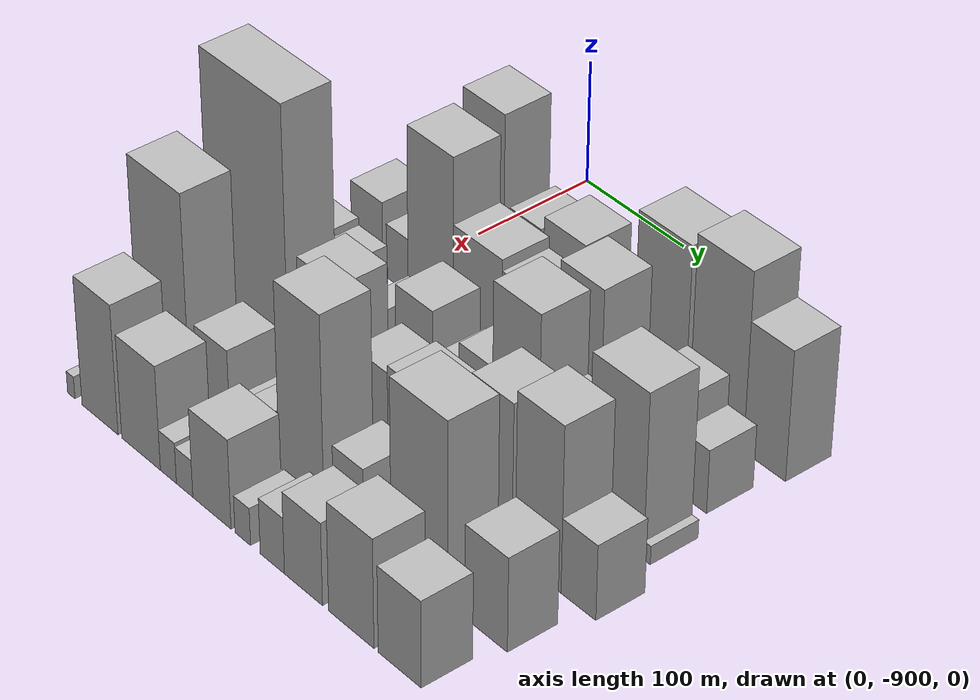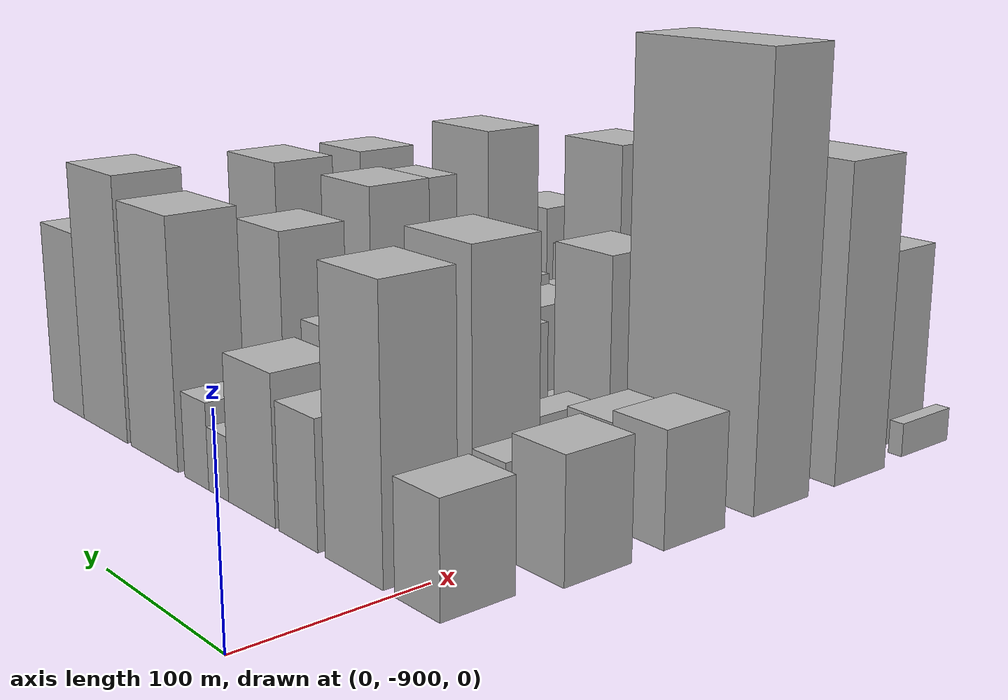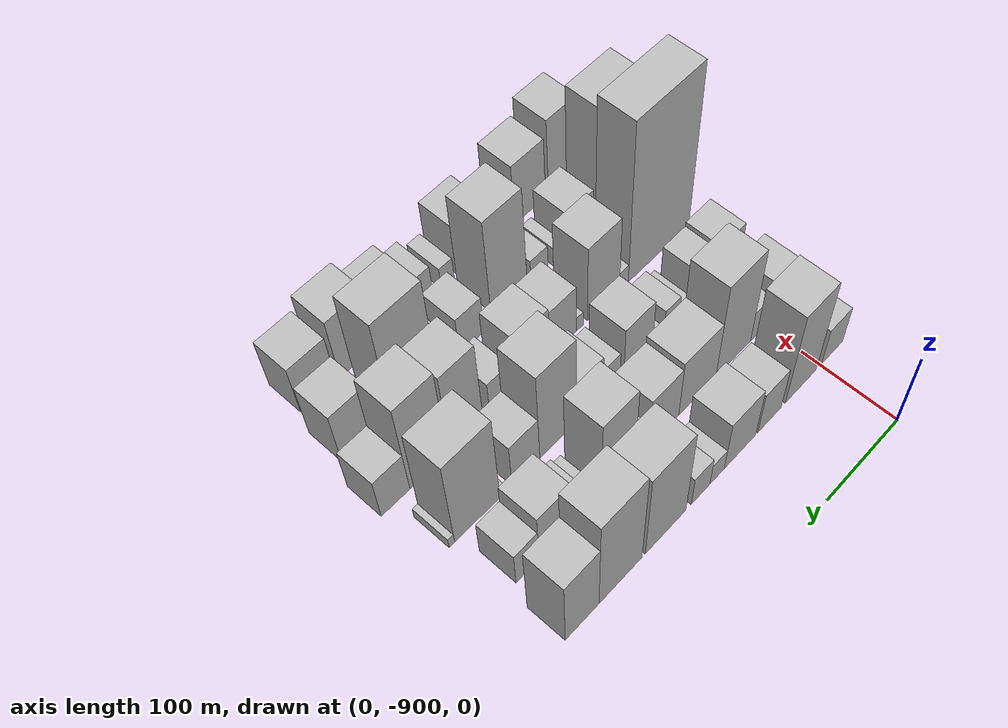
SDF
<sdf version="1.6">
 <world name="default">
  <model name="building_1">
   <static>1</static>
   <pose>100.0000 -916.5898 0 0.000000 0.000000 0.000000</pose>
   <link name="link">
    <pose>0 0 27.00 0 0 0</pose>
    <collision name="collision"><geometry><box><size>40.0000 30.8204 54.0000</size></box></geometry></collision>
    <visual name="visual">
     <cast_shadows>0</cast_shadows>
     <geometry><box><size>40.0000 30.8204 54.0000</size></box></geometry>
     <material>
      <script>
       <uri>model://HANNAS_wall/materials/scripts</uri>
       <uri>model://HANNAS_wall/materials/textures</uri>
       <name>vrc/HANNAS_wall</name>
      </script>
     </material>
    </visual>
   </link>
  </model>
  <model name="building_2">
   <static>1</static>
   <pose>100.0000 -871.5091 0 0.000000 0.000000 0.000000</pose>
   <link name="link">
    <pose>0 0 67.50 0 0 0</pose>
    <collision name="collision"><geometry><box><size>40.0000 43.3409 135.0000</size></box></geometry></collision>
    <visual name="visual">
     <cast_shadows>0</cast_shadows>
     <geometry><box><size>40.0000 43.3409 135.0000</size></box></geometry>
     <material>
      <script>
       <uri>model://HANNAS_wall/materials/scripts</uri>
       <uri>model://HANNAS_wall/materials/textures</uri>
       <name>vrc/HANNAS_wall</name>
      </script>
     </material>
    </visual>
   </link>
  </model>
  <model name="building_3">
   <static>1</static>
   <pose>100.0000 -827.7972 0 0.000000 0.000000 0.000000</pose>
   <link name="link">
    <pose>0 0 31.50 0 0 0</pose>
    <collision name="collision"><geometry><box><size>40.0000 32.0829 63.0000</size></box></geometry></collision>
    <visual name="visual">
     <cast_shadows>0</cast_shadows>
     <geometry><box><size>40.0000 32.0829 63.0000</size></box></geometry>
     <material>
      <script>
       <uri>model://HANNAS_wall/materials/scripts</uri>
       <uri>model://HANNAS_wall/materials/textures</uri>
       <name>vrc/HANNAS_wall</name>
      </script>
     </material>
    </visual>
   </link>
  </model>
  <model name="building_4">
   <static>1</static>
   <pose>100.0000 -787.8705 0 0.000000 0.000000 0.000000</pose>
   <link name="link">
    <pose>0 0 37.50 0 0 0</pose>
    <collision name="collision"><geometry><box><size>40.0000 41.7706 75.0000</size></box></geometry></collision>
    <visual name="visual">
     <cast_shadows>0</cast_shadows>
     <geometry><box><size>40.0000 41.7706 75.0000</size></box></geometry>
     <material>
      <script>
       <uri>model://HANNAS_wall/materials/scripts</uri>
       <uri>model://HANNAS_wall/materials/textures</uri>
       <name>vrc/HANNAS_wall</name>
      </script>
     </material>
    </visual>
   </link>
  </model>
  <model name="building_5">
   <static>1</static>
   <pose>100.0000 -757.5340 0 0.000000 0.000000 0.000000</pose>
   <link name="link">
    <pose>0 0 16.50 0 0 0</pose>
    <collision name="collision"><geometry><box><size>40.0000 18.9024 33.0000</size></box></geometry></collision>
    <visual name="visual">
     <cast_shadows>0</cast_shadows>
     <geometry><box><size>40.0000 18.9024 33.0000</size></box></geometry>
     <material>
      <script>
       <uri>model://HANNAS_wall/materials/scripts</uri>
       <uri>model://HANNAS_wall/materials/textures</uri>
       <name>vrc/HANNAS_wall</name>
      </script>
     </material>
    </visual>
   </link>
  </model>
  <model name="building_6">
   <static>1</static>
   <pose>100.0000 -736.1260 0 0.000000 0.000000 0.000000</pose>
   <link name="link">
    <pose>0 0 22.50 0 0 0</pose>
    <collision name="collision"><geometry><box><size>40.0000 23.9137 45.0000</size></box></geometry></collision>
    <visual name="visual">
     <cast_shadows>0</cast_shadows>
     <geometry><box><size>40.0000 23.9137 45.0000</size></box></geometry>
     <material>
      <script>
       <uri>model://HANNAS_wall/materials/scripts</uri>
       <uri>model://HANNAS_wall/materials/textures</uri>
       <name>vrc/HANNAS_wall</name>
      </script>
     </material>
    </visual>
   </link>
  </model>
  <model name="building_7">
   <static>1</static>
   <pose>100.0000 -691.8284 0 0.000000 0.000000 0.000000</pose>
   <link name="link">
    <pose>0 0 66.00 0 0 0</pose>
    <collision name="collision"><geometry><box><size>40.0000 50.6814 132.0000</size></box></geometry></collision>
    <visual name="visual">
     <cast_shadows>0</cast_shadows>
     <geometry><box><size>40.0000 50.6814 132.0000</size></box></geometry>
     <material>
      <script>
       <uri>model://HANNAS_wall/materials/scripts</uri>
       <uri>model://HANNAS_wall/materials/textures</uri>
       <name>vrc/HANNAS_wall</name>
      </script>
     </material>
    </visual>
   </link>
  </model>
  <model name="building_8">
   <static>1</static>
   <pose>100.0000 -636.6558 0 0.000000 0.000000 0.000000</pose>
   <link name="link">
    <pose>0 0 72.00 0 0 0</pose>
    <collision name="collision"><geometry><box><size>40.0000 51.6640 144.0000</size></box></geometry></collision>
    <visual name="visual">
     <cast_shadows>0</cast_shadows>
     <geometry><box><size>40.0000 51.6640 144.0000</size></box></geometry>
     <material>
      <script>
       <uri>model://HANNAS_wall/materials/scripts</uri>
       <uri>model://HANNAS_wall/materials/textures</uri>
       <name>vrc/HANNAS_wall</name>
      </script>
     </material>
    </visual>
   </link>
  </model>
  <model name="building_9">
   <static>1</static>
   <pose>100.0000 -591.2603 0 0.000000 0.000000 0.000000</pose>
   <link name="link">
    <pose>0 0 52.50 0 0 0</pose>
    <collision name="collision"><geometry><box><size>40.0000 39.1270 105.0000</size></box></geometry></collision>
    <visual name="visual">
     <cast_shadows>0</cast_shadows>
     <geometry><box><size>40.0000 39.1270 105.0000</size></box></geometry>
     <material>
      <script>
       <uri>model://HANNAS_wall/materials/scripts</uri>
       <uri>model://HANNAS_wall/materials/textures</uri>
       <name>vrc/HANNAS_wall</name>
      </script>
     </material>
    </visual>
   </link>
  </model>
  <model name="building_51">
   <static>1</static>
   <pose>160.0000 -922.8829 0 0.000000 0.000000 0.000000</pose>
   <link name="link">
    <pose>0 0 30.00 0 0 0</pose>
    <collision name="collision"><geometry><box><size>40.0000 34.2342 60.0000</size></box></geometry></collision>
    <visual name="visual">
     <cast_shadows>0</cast_shadows>
     <geometry><box><size>40.0000 34.2342 60.0000</size></box></geometry>
     <material>
      <script>
       <uri>model://HANNAS_wall/materials/scripts</uri>
       <uri>model://HANNAS_wall/materials/textures</uri>
       <name>vrc/HANNAS_wall</name>
      </script>
     </material>
    </visual>
   </link>
  </model>
  <model name="building_52">
   <static>1</static>
   <pose>160.0000 -890.1988 0 0.000000 0.000000 0.000000</pose>
   <link name="link">
    <pose>0 0 22.50 0 0 0</pose>
    <collision name="collision"><geometry><box><size>40.0000 23.1340 45.0000</size></box></geometry></collision>
    <visual name="visual">
     <cast_shadows>0</cast_shadows>
     <geometry><box><size>40.0000 23.1340 45.0000</size></box></geometry>
     <material>
      <script>
       <uri>model://HANNAS_wall/materials/scripts</uri>
       <uri>model://HANNAS_wall/materials/textures</uri>
       <name>vrc/HANNAS_wall</name>
      </script>
     </material>
    </visual>
   </link>
  </model>
  <model name="building_53">
   <static>1</static>
   <pose>160.0000 -854.5709 0 0.000000 0.000000 0.000000</pose>
   <link name="link">
    <pose>0 0 69.00 0 0 0</pose>
    <collision name="collision"><geometry><box><size>40.0000 48.1218 138.0000</size></box></geometry></collision>
    <visual name="visual">
     <cast_shadows>0</cast_shadows>
     <geometry><box><size>40.0000 48.1218 138.0000</size></box></geometry>
     <material>
      <script>
       <uri>model://HANNAS_wall/materials/scripts</uri>
       <uri>model://HANNAS_wall/materials/textures</uri>
       <name>vrc/HANNAS_wall</name>
      </script>
     </material>
    </visual>
   </link>
  </model>
  <model name="building_54">
   <static>1</static>
   <pose>160.0000 -805.5470 0 0.000000 0.000000 0.000000</pose>
   <link name="link">
    <pose>0 0 42.00 0 0 0</pose>
    <collision name="collision"><geometry><box><size>40.0000 49.9259 84.0000</size></box></geometry></collision>
    <visual name="visual">
     <cast_shadows>0</cast_shadows>
     <geometry><box><size>40.0000 49.9259 84.0000</size></box></geometry>
     <material>
      <script>
       <uri>model://HANNAS_wall/materials/scripts</uri>
       <uri>model://HANNAS_wall/materials/textures</uri>
       <name>vrc/HANNAS_wall</name>
      </script>
     </material>
    </visual>
   </link>
  </model>
  <model name="building_55">
   <static>1</static>
   <pose>160.0000 -761.2351 0 0.000000 0.000000 0.000000</pose>
   <link name="link">
    <pose>0 0 37.50 0 0 0</pose>
    <collision name="collision"><geometry><box><size>40.0000 38.6980 75.0000</size></box></geometry></collision>
    <visual name="visual">
     <cast_shadows>0</cast_shadows>
     <geometry><box><size>40.0000 38.6980 75.0000</size></box></geometry>
     <material>
      <script>
       <uri>model://HANNAS_wall/materials/scripts</uri>
       <uri>model://HANNAS_wall/materials/textures</uri>
       <name>vrc/HANNAS_wall</name>
      </script>
     </material>
    </visual>
   </link>
  </model>
  <model name="building_56">
   <static>1</static>
   <pose>160.0000 -732.7814 0 0.000000 0.000000 0.000000</pose>
   <link name="link">
    <pose>0 0 18.00 0 0 0</pose>
    <collision name="collision"><geometry><box><size>40.0000 18.2093 36.0000</size></box></geometry></collision>
    <visual name="visual">
     <cast_shadows>0</cast_shadows>
     <geometry><box><size>40.0000 18.2093 36.0000</size></box></geometry>
     <material>
      <script>
       <uri>model://HANNAS_wall/materials/scripts</uri>
       <uri>model://HANNAS_wall/materials/textures</uri>
       <name>vrc/HANNAS_wall</name>
      </script>
     </material>
    </visual>
   </link>
  </model>
  <model name="building_57">
   <static>1</static>
   <pose>160.0000 -702.6959 0 0.000000 0.000000 0.000000</pose>
   <link name="link">
    <pose>0 0 58.50 0 0 0</pose>
    <collision name="collision"><geometry><box><size>40.0000 41.9616 117.0000</size></box></geometry></collision>
    <visual name="visual">
     <cast_shadows>0</cast_shadows>
     <geometry><box><size>40.0000 41.9616 117.0000</size></box></geometry>
     <material>
      <script>
       <uri>model://HANNAS_wall/materials/scripts</uri>
       <uri>model://HANNAS_wall/materials/textures</uri>
       <name>vrc/HANNAS_wall</name>
      </script>
     </material>
    </visual>
   </link>
  </model>
  <model name="building_58">
   <static>1</static>
   <pose>160.0000 -670.9258 0 0.000000 0.000000 0.000000</pose>
   <link name="link">
    <pose>0 0 13.50 0 0 0</pose>
    <collision name="collision"><geometry><box><size>40.0000 11.5786 27.0000</size></box></geometry></collision>
    <visual name="visual">
     <cast_shadows>0</cast_shadows>
     <geometry><box><size>40.0000 11.5786 27.0000</size></box></geometry>
     <material>
      <script>
       <uri>model://HANNAS_wall/materials/scripts</uri>
       <uri>model://HANNAS_wall/materials/textures</uri>
       <name>vrc/HANNAS_wall</name>
      </script>
     </material>
    </visual>
   </link>
  </model>
  <model name="building_59">
   <static>1</static>
   <pose>160.0000 -655.6511 0 0.000000 0.000000 0.000000</pose>
   <link name="link">
    <pose>0 0 18.00 0 0 0</pose>
    <collision name="collision"><geometry><box><size>40.0000 18.9706 36.0000</size></box></geometry></collision>
    <visual name="visual">
     <cast_shadows>0</cast_shadows>
     <geometry><box><size>40.0000 18.9706 36.0000</size></box></geometry>
     <material>
      <script>
       <uri>model://HANNAS_wall/materials/scripts</uri>
       <uri>model://HANNAS_wall/materials/textures</uri>
       <name>vrc/HANNAS_wall</name>
      </script>
     </material>
    </visual>
   </link>
  </model>
  <model name="building_60">
   <static>1</static>
   <pose>160.0000 -626.6289 0 0.000000 0.000000 0.000000</pose>
   <link name="link">
    <pose>0 0 37.50 0 0 0</pose>
    <collision name="collision"><geometry><box><size>40.0000 39.0739 75.0000</size></box></geometry></collision>
    <visual name="visual">
     <cast_shadows>0</cast_shadows>
     <geometry><box><size>40.0000 39.0739 75.0000</size></box></geometry>
     <material>
      <script>
       <uri>model://HANNAS_wall/materials/scripts</uri>
       <uri>model://HANNAS_wall/materials/textures</uri>
       <name>vrc/HANNAS_wall</name>
      </script>
     </material>
    </visual>
   </link>
  </model>
  <model name="building_61">
   <static>1</static>
   <pose>160.0000 -593.7699 0 0.000000 0.000000 0.000000</pose>
   <link name="link">
    <pose>0 0 25.50 0 0 0</pose>
    <collision name="collision"><geometry><box><size>40.0000 26.6440 51.0000</size></box></geometry></collision>
    <visual name="visual">
     <cast_shadows>0</cast_shadows>
     <geometry><box><size>40.0000 26.6440 51.0000</size></box></geometry>
     <material>
      <script>
       <uri>model://HANNAS_wall/materials/scripts</uri>
       <uri>model://HANNAS_wall/materials/textures</uri>
       <name>vrc/HANNAS_wall</name>
      </script>
     </material>
    </visual>
   </link>
  </model>
  <model name="building_98">
   <static>1</static>
   <pose>220.0000 -922.9265 0 0.000000 0.000000 0.000000</pose>
   <link name="link">
    <pose>0 0 28.50 0 0 0</pose>
    <collision name="collision"><geometry><box><size>40.0000 34.1470 57.0000</size></box></geometry></collision>
    <visual name="visual">
     <cast_shadows>0</cast_shadows>
     <geometry><box><size>40.0000 34.1470 57.0000</size></box></geometry>
     <material>
      <script>
       <uri>model://HANNAS_wall/materials/scripts</uri>
       <uri>model://HANNAS_wall/materials/textures</uri>
       <name>vrc/HANNAS_wall</name>
      </script>
     </material>
    </visual>
   </link>
  </model>
  <model name="building_99">
   <static>1</static>
   <pose>220.0000 -890.6963 0 0.000000 0.000000 0.000000</pose>
   <link name="link">
    <pose>0 0 25.50 0 0 0</pose>
    <collision name="collision"><geometry><box><size>40.0000 30.3133 51.0000</size></box></geometry></collision>
    <visual name="visual">
     <cast_shadows>0</cast_shadows>
     <geometry><box><size>40.0000 30.3133 51.0000</size></box></geometry>
     <material>
      <script>
       <uri>model://HANNAS_wall/materials/scripts</uri>
       <uri>model://HANNAS_wall/materials/textures</uri>
       <name>vrc/HANNAS_wall</name>
      </script>
     </material>
    </visual>
   </link>
  </model>
  <model name="building_100">
   <static>1</static>
   <pose>220.0000 -859.3480 0 0.000000 0.000000 0.000000</pose>
   <link name="link">
    <pose>0 0 13.50 0 0 0</pose>
    <collision name="collision"><geometry><box><size>40.0000 12.3832 27.0000</size></box></geometry></collision>
    <visual name="visual">
     <cast_shadows>0</cast_shadows>
     <geometry><box><size>40.0000 12.3832 27.0000</size></box></geometry>
     <material>
      <script>
       <uri>model://HANNAS_wall/materials/scripts</uri>
       <uri>model://HANNAS_wall/materials/textures</uri>
       <name>vrc/HANNAS_wall</name>
      </script>
     </material>
    </visual>
   </link>
  </model>
  <model name="building_101">
   <static>1</static>
   <pose>220.0000 -842.9505 0 0.000000 0.000000 0.000000</pose>
   <link name="link">
    <pose>0 0 19.50 0 0 0</pose>
    <collision name="collision"><geometry><box><size>40.0000 20.4118 39.0000</size></box></geometry></collision>
    <visual name="visual">
     <cast_shadows>0</cast_shadows>
     <geometry><box><size>40.0000 20.4118 39.0000</size></box></geometry>
     <material>
      <script>
       <uri>model://HANNAS_wall/materials/scripts</uri>
       <uri>model://HANNAS_wall/materials/textures</uri>
       <name>vrc/HANNAS_wall</name>
      </script>
     </material>
    </visual>
   </link>
  </model>
  <model name="building_102">
   <static>1</static>
   <pose>220.0000 -822.3984 0 0.000000 0.000000 0.000000</pose>
   <link name="link">
    <pose>0 0 12.00 0 0 0</pose>
    <collision name="collision"><geometry><box><size>40.0000 10.6923 24.0000</size></box></geometry></collision>
    <visual name="visual">
     <cast_shadows>0</cast_shadows>
     <geometry><box><size>40.0000 10.6923 24.0000</size></box></geometry>
     <material>
      <script>
       <uri>model://HANNAS_wall/materials/scripts</uri>
       <uri>model://HANNAS_wall/materials/textures</uri>
       <name>vrc/HANNAS_wall</name>
      </script>
     </material>
    </visual>
   </link>
  </model>
  <model name="building_103">
   <static>1</static>
   <pose>220.0000 -798.0531 0 0.000000 0.000000 0.000000</pose>
   <link name="link">
    <pose>0 0 36.00 0 0 0</pose>
    <collision name="collision"><geometry><box><size>40.0000 37.9985 72.0000</size></box></geometry></collision>
    <visual name="visual">
     <cast_shadows>0</cast_shadows>
     <geometry><box><size>40.0000 37.9985 72.0000</size></box></geometry>
     <material>
      <script>
       <uri>model://HANNAS_wall/materials/scripts</uri>
       <uri>model://HANNAS_wall/materials/textures</uri>
       <name>vrc/HANNAS_wall</name>
      </script>
     </material>
    </visual>
   </link>
  </model>
  <model name="building_104">
   <static>1</static>
   <pose>220.0000 -763.1293 0 0.000000 0.000000 0.000000</pose>
   <link name="link">
    <pose>0 0 21.00 0 0 0</pose>
    <collision name="collision"><geometry><box><size>40.0000 21.8491 42.0000</size></box></geometry></collision>
    <visual name="visual">
     <cast_shadows>0</cast_shadows>
     <geometry><box><size>40.0000 21.8491 42.0000</size></box></geometry>
     <material>
      <script>
       <uri>model://HANNAS_wall/materials/scripts</uri>
       <uri>model://HANNAS_wall/materials/textures</uri>
       <name>vrc/HANNAS_wall</name>
      </script>
     </material>
    </visual>
   </link>
  </model>
  <model name="building_105">
   <static>1</static>
   <pose>220.0000 -735.4498 0 0.000000 0.000000 0.000000</pose>
   <link name="link">
    <pose>0 0 31.50 0 0 0</pose>
    <collision name="collision"><geometry><box><size>40.0000 33.5099 63.0000</size></box></geometry></collision>
    <visual name="visual">
     <cast_shadows>0</cast_shadows>
     <geometry><box><size>40.0000 33.5099 63.0000</size></box></geometry>
     <material>
      <script>
       <uri>model://HANNAS_wall/materials/scripts</uri>
       <uri>model://HANNAS_wall/materials/textures</uri>
       <name>vrc/HANNAS_wall</name>
      </script>
     </material>
    </visual>
   </link>
  </model>
  <model name="building_106">
   <static>1</static>
   <pose>220.0000 -695.8119 0 0.000000 0.000000 0.000000</pose>
   <link name="link">
    <pose>0 0 66.00 0 0 0</pose>
    <collision name="collision"><geometry><box><size>40.0000 45.7659 132.0000</size></box></geometry></collision>
    <visual name="visual">
     <cast_shadows>0</cast_shadows>
     <geometry><box><size>40.0000 45.7659 132.0000</size></box></geometry>
     <material>
      <script>
       <uri>model://HANNAS_wall/materials/scripts</uri>
       <uri>model://HANNAS_wall/materials/textures</uri>
       <name>vrc/HANNAS_wall</name>
      </script>
     </material>
    </visual>
   </link>
  </model>
  <model name="building_107">
   <static>1</static>
   <pose>220.0000 -656.1597 0 0.000000 0.000000 0.000000</pose>
   <link name="link">
    <pose>0 0 33.00 0 0 0</pose>
    <collision name="collision"><geometry><box><size>40.0000 33.5384 66.0000</size></box></geometry></collision>
    <visual name="visual">
     <cast_shadows>0</cast_shadows>
     <geometry><box><size>40.0000 33.5384 66.0000</size></box></geometry>
     <material>
      <script>
       <uri>model://HANNAS_wall/materials/scripts</uri>
       <uri>model://HANNAS_wall/materials/textures</uri>
       <name>vrc/HANNAS_wall</name>
      </script>
     </material>
    </visual>
   </link>
  </model>
  <model name="building_108">
   <static>1</static>
   <pose>220.0000 -628.2798 0 0.000000 0.000000 0.000000</pose>
   <link name="link">
    <pose>0 0 7.50 0 0 0</pose>
    <collision name="collision"><geometry><box><size>40.0000 6.2212 15.0000</size></box></geometry></collision>
    <visual name="visual">
     <cast_shadows>0</cast_shadows>
     <geometry><box><size>40.0000 6.2212 15.0000</size></box></geometry>
     <material>
      <script>
       <uri>model://HANNAS_wall/materials/scripts</uri>
       <uri>model://HANNAS_wall/materials/textures</uri>
       <name>vrc/HANNAS_wall</name>
      </script>
     </material>
    </visual>
   </link>
  </model>
  <model name="building_109">
   <static>1</static>
   <pose>220.0000 -598.9357 0 0.000000 0.000000 0.000000</pose>
   <link name="link">
    <pose>0 0 66.00 0 0 0</pose>
    <collision name="collision"><geometry><box><size>40.0000 52.4671 132.0000</size></box></geometry></collision>
    <visual name="visual">
     <cast_shadows>0</cast_shadows>
     <geometry><box><size>40.0000 52.4671 132.0000</size></box></geometry>
     <material>
      <script>
       <uri>model://HANNAS_wall/materials/scripts</uri>
       <uri>model://HANNAS_wall/materials/textures</uri>
       <name>vrc/HANNAS_wall</name>
      </script>
     </material>
    </visual>
   </link>
  </model>
  <model name="building_110">
   <static>1</static>
   <pose>220.0000 -569.5650 0 0.000000 0.000000 0.000000</pose>
   <link name="link">
    <pose>0 0 7.50 0 0 0</pose>
    <collision name="collision"><geometry><box><size>40.0000 6.2743 15.0000</size></box></geometry></collision>
    <visual name="visual">
     <cast_shadows>0</cast_shadows>
     <geometry><box><size>40.0000 6.2743 15.0000</size></box></geometry>
     <material>
      <script>
       <uri>model://HANNAS_wall/materials/scripts</uri>
       <uri>model://HANNAS_wall/materials/textures</uri>
       <name>vrc/HANNAS_wall</name>
      </script>
     </material>
    </visual>
   </link>
  </model>
  <model name="building_159">
   <static>1</static>
   <pose>280.0000 -897.3479 0 0.000000 0.000000 0.000000</pose>
   <link name="link">
    <pose>0 0 109.50 0 0 0</pose>
    <collision name="collision"><geometry><box><size>40.0000 85.3042 219.0000</size></box></geometry></collision>
    <visual name="visual">
     <cast_shadows>0</cast_shadows>
     <geometry><box><size>40.0000 85.3042 219.0000</size></box></geometry>
     <material>
      <script>
       <uri>model://HANNAS_wall/materials/scripts</uri>
       <uri>model://HANNAS_wall/materials/textures</uri>
       <name>vrc/HANNAS_wall</name>
      </script>
     </material>
    </visual>
   </link>
  </model>
  <model name="building_160">
   <static>1</static>
   <pose>280.0000 -848.5611 0 0.000000 0.000000 0.000000</pose>
   <link name="link">
    <pose>0 0 13.50 0 0 0</pose>
    <collision name="collision"><geometry><box><size>40.0000 12.2693 27.0000</size></box></geometry></collision>
    <visual name="visual">
     <cast_shadows>0</cast_shadows>
     <geometry><box><size>40.0000 12.2693 27.0000</size></box></geometry>
     <material>
      <script>
       <uri>model://HANNAS_wall/materials/scripts</uri>
       <uri>model://HANNAS_wall/materials/textures</uri>
       <name>vrc/HANNAS_wall</name>
      </script>
     </material>
    </visual>
   </link>
  </model>
  <model name="building_161">
   <static>1</static>
   <pose>280.0000 -821.1986 0 0.000000 0.000000 0.000000</pose>
   <link name="link">
    <pose>0 0 54.00 0 0 0</pose>
    <collision name="collision"><geometry><box><size>40.0000 42.4558 108.0000</size></box></geometry></collision>
    <visual name="visual">
     <cast_shadows>0</cast_shadows>
     <geometry><box><size>40.0000 42.4558 108.0000</size></box></geometry>
     <material>
      <script>
       <uri>model://HANNAS_wall/materials/scripts</uri>
       <uri>model://HANNAS_wall/materials/textures</uri>
       <name>vrc/HANNAS_wall</name>
      </script>
     </material>
    </visual>
   </link>
  </model>
  <model name="building_162">
   <static>1</static>
   <pose>280.0000 -789.6836 0 0.000000 0.000000 0.000000</pose>
   <link name="link">
    <pose>0 0 10.50 0 0 0</pose>
    <collision name="collision"><geometry><box><size>40.0000 8.5741 21.0000</size></box></geometry></collision>
    <visual name="visual">
     <cast_shadows>0</cast_shadows>
     <geometry><box><size>40.0000 8.5741 21.0000</size></box></geometry>
     <material>
      <script>
       <uri>model://HANNAS_wall/materials/scripts</uri>
       <uri>model://HANNAS_wall/materials/textures</uri>
       <name>vrc/HANNAS_wall</name>
      </script>
     </material>
    </visual>
   </link>
  </model>
  <model name="building_163">
   <static>1</static>
   <pose>280.0000 -768.0450 0 0.000000 0.000000 0.000000</pose>
   <link name="link">
    <pose>0 0 34.50 0 0 0</pose>
    <collision name="collision"><geometry><box><size>40.0000 34.7032 69.0000</size></box></geometry></collision>
    <visual name="visual">
     <cast_shadows>0</cast_shadows>
     <geometry><box><size>40.0000 34.7032 69.0000</size></box></geometry>
     <material>
      <script>
       <uri>model://HANNAS_wall/materials/scripts</uri>
       <uri>model://HANNAS_wall/materials/textures</uri>
       <name>vrc/HANNAS_wall</name>
      </script>
     </material>
    </visual>
   </link>
  </model>
  <model name="building_164">
   <static>1</static>
   <pose>280.0000 -730.5774 0 0.000000 0.000000 0.000000</pose>
   <link name="link">
    <pose>0 0 37.50 0 0 0</pose>
    <collision name="collision"><geometry><box><size>40.0000 40.2319 75.0000</size></box></geometry></collision>
    <visual name="visual">
     <cast_shadows>0</cast_shadows>
     <geometry><box><size>40.0000 40.2319 75.0000</size></box></geometry>
     <material>
      <script>
       <uri>model://HANNAS_wall/materials/scripts</uri>
       <uri>model://HANNAS_wall/materials/textures</uri>
       <name>vrc/HANNAS_wall</name>
      </script>
     </material>
    </visual>
   </link>
  </model>
  <model name="building_165">
   <static>1</static>
   <pose>280.0000 -689.0456 0 0.000000 0.000000 0.000000</pose>
   <link name="link">
    <pose>0 0 24.00 0 0 0</pose>
    <collision name="collision"><geometry><box><size>40.0000 26.8316 48.0000</size></box></geometry></collision>
    <visual name="visual">
     <cast_shadows>0</cast_shadows>
     <geometry><box><size>40.0000 26.8316 48.0000</size></box></geometry>
     <material>
      <script>
       <uri>model://HANNAS_wall/materials/scripts</uri>
       <uri>model://HANNAS_wall/materials/textures</uri>
       <name>vrc/HANNAS_wall</name>
      </script>
     </material>
    </visual>
   </link>
  </model>
  <model name="building_166">
   <static>1</static>
   <pose>280.0000 -647.8301 0 0.000000 0.000000 0.000000</pose>
   <link name="link">
    <pose>0 0 60.00 0 0 0</pose>
    <collision name="collision"><geometry><box><size>40.0000 39.5995 120.0000</size></box></geometry></collision>
    <visual name="visual">
     <cast_shadows>0</cast_shadows>
     <geometry><box><size>40.0000 39.5995 120.0000</size></box></geometry>
     <material>
      <script>
       <uri>model://HANNAS_wall/materials/scripts</uri>
       <uri>model://HANNAS_wall/materials/textures</uri>
       <name>vrc/HANNAS_wall</name>
      </script>
     </material>
    </visual>
   </link>
  </model>
  <model name="building_167">
   <static>1</static>
   <pose>280.0000 -603.2795 0 0.000000 0.000000 0.000000</pose>
   <link name="link">
    <pose>0 0 66.00 0 0 0</pose>
    <collision name="collision"><geometry><box><size>40.0000 43.5017 132.0000</size></box></geometry></collision>
    <visual name="visual">
     <cast_shadows>0</cast_shadows>
     <geometry><box><size>40.0000 43.5017 132.0000</size></box></geometry>
     <material>
      <script>
       <uri>model://HANNAS_wall/materials/scripts</uri>
       <uri>model://HANNAS_wall/materials/textures</uri>
       <name>vrc/HANNAS_wall</name>
      </script>
     </material>
    </visual>
   </link>
  </model>
  <model name="building_168">
   <static>1</static>
   <pose>280.0000 -565.3099 0 0.000000 0.000000 0.000000</pose>
   <link name="link">
    <pose>0 0 30.00 0 0 0</pose>
    <collision name="collision"><geometry><box><size>40.0000 32.4373 60.0000</size></box></geometry></collision>
    <visual name="visual">
     <cast_shadows>0</cast_shadows>
     <geometry><box><size>40.0000 32.4373 60.0000</size></box></geometry>
     <material>
      <script>
       <uri>model://HANNAS_wall/materials/scripts</uri>
       <uri>model://HANNAS_wall/materials/textures</uri>
       <name>vrc/HANNAS_wall</name>
      </script>
     </material>
    </visual>
   </link>
  </model>
  <model name="building_221">
   <static>1</static>
   <pose>340.0000 -911.4410 0 0.000000 0.000000 0.000000</pose>
   <link name="link">
    <pose>0 0 81.00 0 0 0</pose>
    <collision name="collision"><geometry><box><size>40.0000 57.1181 162.0000</size></box></geometry></collision>
    <visual name="visual">
     <cast_shadows>0</cast_shadows>
     <geometry><box><size>40.0000 57.1181 162.0000</size></box></geometry>
     <material>
      <script>
       <uri>model://HANNAS_wall/materials/scripts</uri>
       <uri>model://HANNAS_wall/materials/textures</uri>
       <name>vrc/HANNAS_wall</name>
      </script>
     </material>
    </visual>
   </link>
  </model>
  <model name="building_222">
   <static>1</static>
   <pose>340.0000 -857.1068 0 0.000000 0.000000 0.000000</pose>
   <link name="link">
    <pose>0 0 31.50 0 0 0</pose>
    <collision name="collision"><geometry><box><size>40.0000 35.5503 63.0000</size></box></geometry></collision>
    <visual name="visual">
     <cast_shadows>0</cast_shadows>
     <geometry><box><size>40.0000 35.5503 63.0000</size></box></geometry>
     <material>
      <script>
       <uri>model://HANNAS_wall/materials/scripts</uri>
       <uri>model://HANNAS_wall/materials/textures</uri>
       <name>vrc/HANNAS_wall</name>
      </script>
     </material>
    </visual>
   </link>
  </model>
  <model name="building_223">
   <static>1</static>
   <pose>340.0000 -829.2139 0 0.000000 0.000000 0.000000</pose>
   <link name="link">
    <pose>0 0 13.50 0 0 0</pose>
    <collision name="collision"><geometry><box><size>40.0000 12.2354 27.0000</size></box></geometry></collision>
    <visual name="visual">
     <cast_shadows>0</cast_shadows>
     <geometry><box><size>40.0000 12.2354 27.0000</size></box></geometry>
     <material>
      <script>
       <uri>model://HANNAS_wall/materials/scripts</uri>
       <uri>model://HANNAS_wall/materials/textures</uri>
       <name>vrc/HANNAS_wall</name>
      </script>
     </material>
    </visual>
   </link>
  </model>
  <model name="building_224">
   <static>1</static>
   <pose>340.0000 -802.9417 0 0.000000 0.000000 0.000000</pose>
   <link name="link">
    <pose>0 0 21.00 0 0 0</pose>
    <collision name="collision"><geometry><box><size>40.0000 22.3090 42.0000</size></box></geometry></collision>
    <visual name="visual">
     <cast_shadows>0</cast_shadows>
     <geometry><box><size>40.0000 22.3090 42.0000</size></box></geometry>
     <material>
      <script>
       <uri>model://HANNAS_wall/materials/scripts</uri>
       <uri>model://HANNAS_wall/materials/textures</uri>
       <name>vrc/HANNAS_wall</name>
      </script>
     </material>
    </visual>
   </link>
  </model>
  <model name="building_225">
   <static>1</static>
   <pose>340.0000 -763.8187 0 0.000000 0.000000 0.000000</pose>
   <link name="link">
    <pose>0 0 75.00 0 0 0</pose>
    <collision name="collision"><geometry><box><size>40.0000 45.9371 150.0000</size></box></geometry></collision>
    <visual name="visual">
     <cast_shadows>0</cast_shadows>
     <geometry><box><size>40.0000 45.9371 150.0000</size></box></geometry>
     <material>
      <script>
       <uri>model://HANNAS_wall/materials/scripts</uri>
       <uri>model://HANNAS_wall/materials/textures</uri>
       <name>vrc/HANNAS_wall</name>
      </script>
     </material>
    </visual>
   </link>
  </model>
  <model name="building_226">
   <static>1</static>
   <pose>340.0000 -735.9149 0 0.000000 0.000000 0.000000</pose>
   <link name="link">
    <pose>0 0 10.50 0 0 0</pose>
    <collision name="collision"><geometry><box><size>40.0000 9.8703 21.0000</size></box></geometry></collision>
    <visual name="visual">
     <cast_shadows>0</cast_shadows>
     <geometry><box><size>40.0000 9.8703 21.0000</size></box></geometry>
     <material>
      <script>
       <uri>model://HANNAS_wall/materials/scripts</uri>
       <uri>model://HANNAS_wall/materials/textures</uri>
       <name>vrc/HANNAS_wall</name>
      </script>
     </material>
    </visual>
   </link>
  </model>
  <model name="building_227">
   <static>1</static>
   <pose>340.0000 -715.6393 0 0.000000 0.000000 0.000000</pose>
   <link name="link">
    <pose>0 0 27.00 0 0 0</pose>
    <collision name="collision"><geometry><box><size>40.0000 30.6809 54.0000</size></box></geometry></collision>
    <visual name="visual">
     <cast_shadows>0</cast_shadows>
     <geometry><box><size>40.0000 30.6809 54.0000</size></box></geometry>
     <material>
      <script>
       <uri>model://HANNAS_wall/materials/scripts</uri>
       <uri>model://HANNAS_wall/materials/textures</uri>
       <name>vrc/HANNAS_wall</name>
      </script>
     </material>
    </visual>
   </link>
  </model>
  <model name="building_228">
   <static>1</static>
   <pose>340.0000 -683.1715 0 0.000000 0.000000 0.000000</pose>
   <link name="link">
    <pose>0 0 18.00 0 0 0</pose>
    <collision name="collision"><geometry><box><size>40.0000 20.2547 36.0000</size></box></geometry></collision>
    <visual name="visual">
     <cast_shadows>0</cast_shadows>
     <geometry><box><size>40.0000 20.2547 36.0000</size></box></geometry>
     <material>
      <script>
       <uri>model://HANNAS_wall/materials/scripts</uri>
       <uri>model://HANNAS_wall/materials/textures</uri>
       <name>vrc/HANNAS_wall</name>
      </script>
     </material>
    </visual>
   </link>
  </model>
  <model name="building_229">
   <static>1</static>
   <pose>340.0000 -645.5156 0 0.000000 0.000000 0.000000</pose>
   <link name="link">
    <pose>0 0 72.00 0 0 0</pose>
    <collision name="collision"><geometry><box><size>40.0000 55.0572 144.0000</size></box></geometry></collision>
    <visual name="visual">
     <cast_shadows>0</cast_shadows>
     <geometry><box><size>40.0000 55.0572 144.0000</size></box></geometry>
     <material>
      <script>
       <uri>model://HANNAS_wall/materials/scripts</uri>
       <uri>model://HANNAS_wall/materials/textures</uri>
       <name>vrc/HANNAS_wall</name>
      </script>
     </material>
    </visual>
   </link>
  </model>
  <model name="building_230">
   <static>1</static>
   <pose>340.0000 -606.7621 0 0.000000 0.000000 0.000000</pose>
   <link name="link">
    <pose>0 0 10.50 0 0 0</pose>
    <collision name="collision"><geometry><box><size>40.0000 10.4497 21.0000</size></box></geometry></collision>
    <visual name="visual">
     <cast_shadows>0</cast_shadows>
     <geometry><box><size>40.0000 10.4497 21.0000</size></box></geometry>
     <material>
      <script>
       <uri>model://HANNAS_wall/materials/scripts</uri>
       <uri>model://HANNAS_wall/materials/textures</uri>
       <name>vrc/HANNAS_wall</name>
      </script>
     </material>
    </visual>
   </link>
  </model>
  <model name="building_231">
   <static>1</static>
   <pose>340.0000 -581.4676 0 0.000000 0.000000 0.000000</pose>
   <link name="link">
    <pose>0 0 37.50 0 0 0</pose>
    <collision name="collision"><geometry><box><size>40.0000 40.1393 75.0000</size></box></geometry></collision>
    <visual name="visual">
     <cast_shadows>0</cast_shadows>
     <geometry><box><size>40.0000 40.1393 75.0000</size></box></geometry>
     <material>
      <script>
       <uri>model://HANNAS_wall/materials/scripts</uri>
       <uri>model://HANNAS_wall/materials/textures</uri>
       <name>vrc/HANNAS_wall</name>
      </script>
     </material>
    </visual>
   </link>
  </model>
  <model name="building_279">
   <static>1</static>
   <pose>400.0000 -931.8441 0 0.000000 0.000000 0.000000</pose>
   <link name="link">
    <pose>0 0 9.00 0 0 0</pose>
    <collision name="collision"><geometry><box><size>40.0000 8.3119 18.0000</size></box></geometry></collision>
    <visual name="visual">
     <cast_shadows>0</cast_shadows>
     <geometry><box><size>40.0000 8.3119 18.0000</size></box></geometry>
     <material>
      <script>
       <uri>model://HANNAS_wall/materials/scripts</uri>
       <uri>model://HANNAS_wall/materials/textures</uri>
       <name>vrc/HANNAS_wall</name>
      </script>
     </material>
    </visual>
   </link>
  </model>
  <model name="building_280">
   <static>1</static>
   <pose>400.0000 -899.5702 0 0.000000 0.000000 0.000000</pose>
   <link name="link">
    <pose>0 0 52.50 0 0 0</pose>
    <collision name="collision"><geometry><box><size>40.0000 40.2359 105.0000</size></box></geometry></collision>
    <visual name="visual">
     <cast_shadows>0</cast_shadows>
     <geometry><box><size>40.0000 40.2359 105.0000</size></box></geometry>
     <material>
      <script>
       <uri>model://HANNAS_wall/materials/scripts</uri>
       <uri>model://HANNAS_wall/materials/textures</uri>
       <name>vrc/HANNAS_wall</name>
      </script>
     </material>
    </visual>
   </link>
  </model>
  <model name="building_281">
   <static>1</static>
   <pose>400.0000 -854.3416 0 0.000000 0.000000 0.000000</pose>
   <link name="link">
    <pose>0 0 42.00 0 0 0</pose>
    <collision name="collision"><geometry><box><size>40.0000 42.2213 84.0000</size></box></geometry></collision>
    <visual name="visual">
     <cast_shadows>0</cast_shadows>
     <geometry><box><size>40.0000 42.2213 84.0000</size></box></geometry>
     <material>
      <script>
       <uri>model://HANNAS_wall/materials/scripts</uri>
       <uri>model://HANNAS_wall/materials/textures</uri>
       <name>vrc/HANNAS_wall</name>
      </script>
     </material>
    </visual>
   </link>
  </model>
  <model name="building_282">
   <static>1</static>
   <pose>400.0000 -824.6437 0 0.000000 0.000000 0.000000</pose>
   <link name="link">
    <pose>0 0 16.50 0 0 0</pose>
    <collision name="collision"><geometry><box><size>40.0000 17.1745 33.0000</size></box></geometry></collision>
    <visual name="visual">
     <cast_shadows>0</cast_shadows>
     <geometry><box><size>40.0000 17.1745 33.0000</size></box></geometry>
     <material>
      <script>
       <uri>model://HANNAS_wall/materials/scripts</uri>
       <uri>model://HANNAS_wall/materials/textures</uri>
       <name>vrc/HANNAS_wall</name>
      </script>
     </material>
    </visual>
   </link>
  </model>
  <model name="building_283">
   <static>1</static>
   <pose>400.0000 -807.2916 0 0.000000 0.000000 0.000000</pose>
   <link name="link">
    <pose>0 0 15.00 0 0 0</pose>
    <collision name="collision"><geometry><box><size>40.0000 17.5299 30.0000</size></box></geometry></collision>
    <visual name="visual">
     <cast_shadows>0</cast_shadows>
     <geometry><box><size>40.0000 17.5299 30.0000</size></box></geometry>
     <material>
      <script>
       <uri>model://HANNAS_wall/materials/scripts</uri>
       <uri>model://HANNAS_wall/materials/textures</uri>
       <name>vrc/HANNAS_wall</name>
      </script>
     </material>
    </visual>
   </link>
  </model>
  <model name="building_284">
   <static>1</static>
   <pose>400.0000 -778.4213 0 0.000000 0.000000 0.000000</pose>
   <link name="link">
    <pose>0 0 36.00 0 0 0</pose>
    <collision name="collision"><geometry><box><size>40.0000 40.2107 72.0000</size></box></geometry></collision>
    <visual name="visual">
     <cast_shadows>0</cast_shadows>
     <geometry><box><size>40.0000 40.2107 72.0000</size></box></geometry>
     <material>
      <script>
       <uri>model://HANNAS_wall/materials/scripts</uri>
       <uri>model://HANNAS_wall/materials/textures</uri>
       <name>vrc/HANNAS_wall</name>
      </script>
     </material>
    </visual>
   </link>
  </model>
  <model name="building_285">
   <static>1</static>
   <pose>400.0000 -746.2436 0 0.000000 0.000000 0.000000</pose>
   <link name="link">
    <pose>0 0 15.00 0 0 0</pose>
    <collision name="collision"><geometry><box><size>40.0000 16.1446 30.0000</size></box></geometry></collision>
    <visual name="visual">
     <cast_shadows>0</cast_shadows>
     <geometry><box><size>40.0000 16.1446 30.0000</size></box></geometry>
     <material>
      <script>
       <uri>model://HANNAS_wall/materials/scripts</uri>
       <uri>model://HANNAS_wall/materials/textures</uri>
       <name>vrc/HANNAS_wall</name>
      </script>
     </material>
    </visual>
   </link>
  </model>
  <model name="building_286">
   <static>1</static>
   <pose>400.0000 -715.8528 0 0.000000 0.000000 0.000000</pose>
   <link name="link">
    <pose>0 0 22.50 0 0 0</pose>
    <collision name="collision"><geometry><box><size>40.0000 24.6371 45.0000</size></box></geometry></collision>
    <visual name="visual">
     <cast_shadows>0</cast_shadows>
     <geometry><box><size>40.0000 24.6371 45.0000</size></box></geometry>
     <material>
      <script>
       <uri>model://HANNAS_wall/materials/scripts</uri>
       <uri>model://HANNAS_wall/materials/textures</uri>
       <name>vrc/HANNAS_wall</name>
      </script>
     </material>
    </visual>
   </link>
  </model>
  <model name="building_287">
   <static>1</static>
   <pose>400.0000 -684.4619 0 0.000000 0.000000 0.000000</pose>
   <link name="link">
    <pose>0 0 33.00 0 0 0</pose>
    <collision name="collision"><geometry><box><size>40.0000 38.1447 66.0000</size></box></geometry></collision>
    <visual name="visual">
     <cast_shadows>0</cast_shadows>
     <geometry><box><size>40.0000 38.1447 66.0000</size></box></geometry>
     <material>
      <script>
       <uri>model://HANNAS_wall/materials/scripts</uri>
       <uri>model://HANNAS_wall/materials/textures</uri>
       <name>vrc/HANNAS_wall</name>
      </script>
     </material>
    </visual>
   </link>
  </model>
  <model name="building_288">
   <static>1</static>
   <pose>400.0000 -637.2155 0 0.000000 0.000000 0.000000</pose>
   <link name="link">
    <pose>0 0 43.50 0 0 0</pose>
    <collision name="collision"><geometry><box><size>40.0000 44.3481 87.0000</size></box></geometry></collision>
    <visual name="visual">
     <cast_shadows>0</cast_shadows>
     <geometry><box><size>40.0000 44.3481 87.0000</size></box></geometry>
     <material>
      <script>
       <uri>model://HANNAS_wall/materials/scripts</uri>
       <uri>model://HANNAS_wall/materials/textures</uri>
       <name>vrc/HANNAS_wall</name>
      </script>
     </material>
    </visual>
   </link>
  </model>
  <model name="building_289">
   <static>1</static>
   <pose>400.0000 -590.4970 0 0.000000 0.000000 0.000000</pose>
   <link name="link">
    <pose>0 0 34.50 0 0 0</pose>
    <collision name="collision"><geometry><box><size>40.0000 41.0888 69.0000</size></box></geometry></collision>
    <visual name="visual">
     <cast_shadows>0</cast_shadows>
     <geometry><box><size>40.0000 41.0888 69.0000</size></box></geometry>
     <material>
      <script>
       <uri>model://HANNAS_wall/materials/scripts</uri>
       <uri>model://HANNAS_wall/materials/textures</uri>
       <name>vrc/HANNAS_wall</name>
      </script>
     </material>
    </visual>
   </link>
  </model>
 </world>
</sdf>
